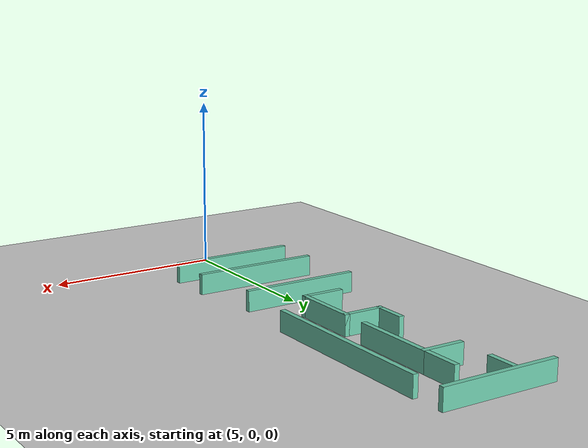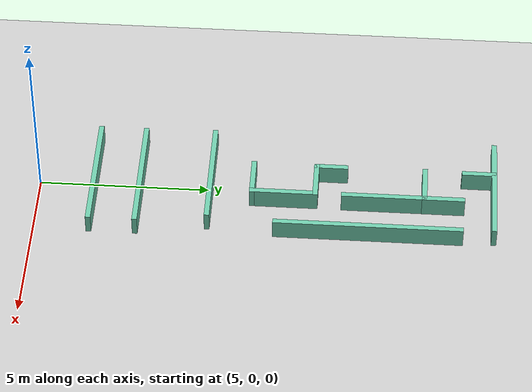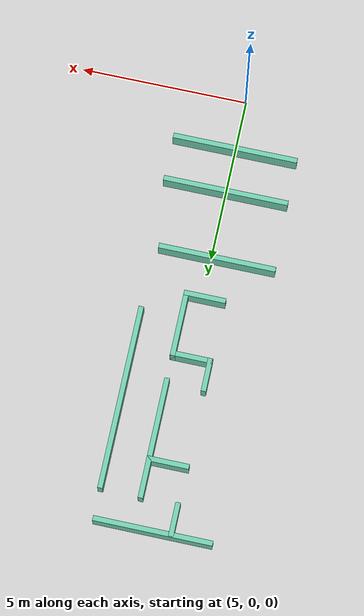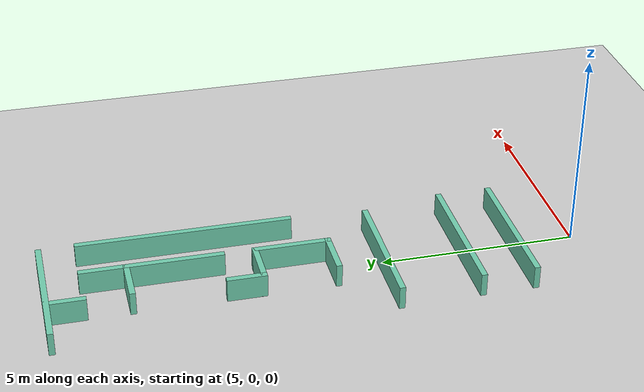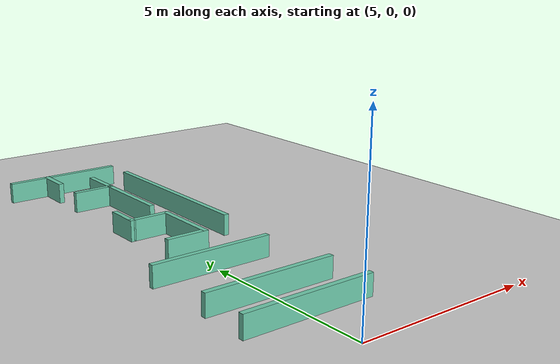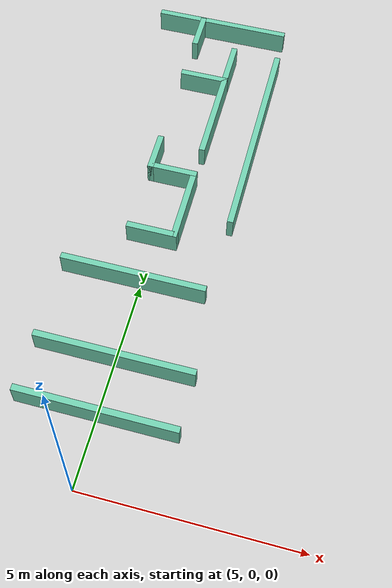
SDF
<sdf version="1.7">
 <world name="default">
  <model name="ground_plane">
   <static>1</static>
   <link name="link">
    <collision name="collision">
     <geometry><plane><normal>0 0 1</normal><size>100 100</size></plane></geometry>
     <surface><friction><ode><mu>100</mu><mu2>50</mu2></ode></friction></surface>
    </collision>
    <visual name="visual">
     <cast_shadows>0</cast_shadows>
     <geometry><plane><normal>0 0 1</normal><size>100 100</size></plane></geometry>
     <material>
      <script><uri>file://media/materials/scripts/gazebo.material</uri><name>Gazebo/Grey</name></script>
     </material>
    </visual>
   </link>
  </model>
  <model name="complicated_maze">
   <pose>-457.073 -167.601 0 0 -0 0</pose>
   <link name="Wall_104">
    <collision name="Wall_104_Collision">
     <geometry><box><size>3.5 0.15 0.6</size></box></geometry>
     <pose>0 0 0.3 0 -0 0</pose>
    </collision>
    <visual name="Wall_104_Visual">
     <pose>0 0 0.3 0 -0 0</pose>
     <geometry><box><size>3.5 0.15 0.6</size></box></geometry>
     <material>
      <script><uri>file://media/materials/scripts/gazebo.material</uri><name>Gazebo/Grey</name></script>
      <ambient>0.435294 0.796078 0.67451 1</ambient>
      <ambient>1 1 1 1</ambient>
     </material>
     <meta><layer>0</layer></meta>
    </visual>
    <pose>461.998 180.966 0 0 -0 0</pose>
   </link>
   <link name="Wall_115">
    <collision name="Wall_115_Collision">
     <geometry><box><size>5.5 0.15 0.6</size></box></geometry>
     <pose>0 0 0.3 0 -0 0</pose>
    </collision>
    <visual name="Wall_115_Visual">
     <pose>0 0 0.3 0 -0 0</pose>
     <geometry><box><size>5.5 0.15 0.6</size></box></geometry>
     <material>
      <script><uri>file://media/materials/scripts/gazebo.material</uri><name>Gazebo/Grey</name></script>
      <ambient>0.435294 0.796078 0.67451 1</ambient>
      <ambient>1 1 1 1</ambient>
     </material>
     <meta><layer>0</layer></meta>
    </visual>
    <pose>463.74 177.328 0 0 -0 -1.5708</pose>
   </link>
   <link name="Wall_194">
    <collision name="Wall_194_Collision">
     <geometry><box><size>3.75 0.15 0.6</size></box></geometry>
     <pose>0 0 0.3 0 -0 0</pose>
    </collision>
    <visual name="Wall_194_Visual">
     <pose>0 0 0.3 0 -0 0</pose>
     <geometry><box><size>3.75 0.15 0.6</size></box></geometry>
     <material>
      <script><uri>file://media/materials/scripts/gazebo.material</uri><name>Gazebo/Grey</name></script>
      <ambient>0.435294 0.796078 0.67451 1</ambient>
      <ambient>1 1 1 1</ambient>
     </material>
     <meta><layer>0</layer></meta>
    </visual>
    <pose>462.07 170.59 0 0 -0 3.14159</pose>
   </link>
   <link name="Wall_196">
    <collision name="Wall_196_Collision">
     <geometry><box><size>3.75 0.15 0.6</size></box></geometry>
     <pose>0 0 0.3 0 -0 0</pose>
    </collision>
    <visual name="Wall_196_Visual">
     <pose>0 0 0.3 0 -0 0</pose>
     <geometry><box><size>3.75 0.15 0.6</size></box></geometry>
     <material>
      <script><uri>file://media/materials/scripts/gazebo.material</uri><name>Gazebo/Grey</name></script>
      <ambient>0.435294 0.796078 0.67451 1</ambient>
      <ambient>1 1 1 1</ambient>
     </material>
     <meta><layer>0</layer></meta>
    </visual>
    <pose>462.07 169.24 0 0 -0 0</pose>
   </link>
   <link name="Wall_76">
    <collision name="Wall_76_Collision">
     <geometry><box><size>1 0.15 0.6</size></box></geometry>
     <pose>0 0 0.3 0 -0 0</pose>
    </collision>
    <visual name="Wall_76_Visual">
     <pose>0 0 0.3 0 -0 0</pose>
     <geometry><box><size>1 0.15 0.6</size></box></geometry>
     <material>
      <script><uri>file://media/materials/scripts/gazebo.material</uri><name>Gazebo/Grey</name></script>
      <ambient>0.435294 0.796078 0.67451 1</ambient>
      <ambient>1 1 1 1</ambient>
     </material>
     <meta><layer>0</layer></meta>
    </visual>
    <pose>461.462 180.516 0 0 -0 -1.5708</pose>
   </link>
   <link name="Wall_78">
    <collision name="Wall_78_Collision">
     <geometry><box><size>1.25 0.15 0.6</size></box></geometry>
     <pose>0 0 0.3 0 -0 0</pose>
    </collision>
    <visual name="Wall_78_Visual">
     <pose>0 0 0.3 0 -0 0</pose>
     <geometry><box><size>1.25 0.15 0.6</size></box></geometry>
     <material>
      <script><uri>file://media/materials/scripts/gazebo.material</uri><name>Gazebo/Grey</name></script>
      <ambient>0.435294 0.796078 0.67451 1</ambient>
      <ambient>1 1 1 1</ambient>
     </material>
     <meta><layer>0</layer></meta>
    </visual>
    <pose>461.999 178.938 0 0 -0 0</pose>
   </link>
   <link name="Wall_79">
    <collision name="Wall_79_Collision">
     <geometry><box><size>1.25 0.15 0.6</size></box></geometry>
     <pose>0 0 0.3 0 -0 0</pose>
    </collision>
    <visual name="Wall_79_Visual">
     <pose>0 0 0.3 0 -0 0</pose>
     <geometry><box><size>1.25 0.15 0.6</size></box></geometry>
     <material>
      <script><uri>file://media/materials/scripts/gazebo.material</uri><name>Gazebo/Grey</name></script>
      <ambient>0.435294 0.796078 0.67451 1</ambient>
      <ambient>1 1 1 1</ambient>
     </material>
     <meta><layer>0</layer></meta>
    </visual>
    <pose>462.549 179.488 0 0 -0 1.5708</pose>
   </link>
   <link name="Wall_81">
    <collision name="Wall_81_Collision">
     <geometry><box><size>2.5 0.15 0.6</size></box></geometry>
     <pose>0 0 0.3 0 -0 0</pose>
    </collision>
    <visual name="Wall_81_Visual">
     <pose>0 0 0.3 0 -0 0</pose>
     <geometry><box><size>2.5 0.15 0.6</size></box></geometry>
     <material>
      <script><uri>file://media/materials/scripts/gazebo.material</uri><name>Gazebo/Grey</name></script>
      <ambient>0.435294 0.796078 0.67451 1</ambient>
      <ambient>1 1 1 1</ambient>
     </material>
     <meta><layer>0</layer></meta>
    </visual>
    <pose>462.549 177.763 0 0 -0 -1.5708</pose>
   </link>
   <link name="Wall_85">
    <collision name="Wall_85_Collision">
     <geometry><box><size>1 0.15 0.6</size></box></geometry>
     <pose>0 0 0.3 0 -0 0</pose>
    </collision>
    <visual name="Wall_85_Visual">
     <pose>0 0 0.3 0 -0 0</pose>
     <geometry><box><size>1 0.15 0.6</size></box></geometry>
     <material>
      <script><uri>file://media/materials/scripts/gazebo.material</uri><name>Gazebo/Grey</name></script>
      <ambient>0.435294 0.796078 0.67451 1</ambient>
      <ambient>1 1 1 1</ambient>
     </material>
     <meta><layer>0</layer></meta>
    </visual>
    <pose>461.443 176.173 0 0 -0 -1.5708</pose>
   </link>
   <link name="Wall_86">
    <collision name="Wall_86_Collision">
     <geometry><box><size>1.25 0.15 0.6</size></box></geometry>
     <pose>0 0 0.3 0 -0 0</pose>
    </collision>
    <visual name="Wall_86_Visual">
     <pose>0 0 0.3 0 -0 0</pose>
     <geometry><box><size>1.25 0.15 0.6</size></box></geometry>
     <material>
      <script><uri>file://media/materials/scripts/gazebo.material</uri><name>Gazebo/Grey</name></script>
      <ambient>0.435294 0.796078 0.67451 1</ambient>
      <ambient>1 1 1 1</ambient>
     </material>
     <meta><layer>0</layer></meta>
    </visual>
    <pose>461.993 175.748 0 0 -0 0</pose>
   </link>
   <link name="Wall_87">
    <collision name="Wall_87_Collision">
     <geometry><box><size>2 0.15 0.6</size></box></geometry>
     <pose>0 0 0.3 0 -0 0</pose>
    </collision>
    <visual name="Wall_87_Visual">
     <pose>0 0 0.3 0 -0 0</pose>
     <geometry><box><size>2 0.15 0.6</size></box></geometry>
     <material>
      <script><uri>file://media/materials/scripts/gazebo.material</uri><name>Gazebo/Grey</name></script>
      <ambient>0.435294 0.796078 0.67451 1</ambient>
      <ambient>1 1 1 1</ambient>
     </material>
     <meta><layer>0</layer></meta>
    </visual>
    <pose>462.543 174.823 0 0 -0 -1.5708</pose>
   </link>
   <link name="Wall_88">
    <collision name="Wall_88_Collision">
     <geometry><box><size>1.25 0.15 0.6</size></box></geometry>
     <pose>0 0 0.3 0 -0 0</pose>
    </collision>
    <visual name="Wall_88_Visual">
     <pose>0 0 0.3 0 -0 0</pose>
     <geometry><box><size>1.25 0.15 0.6</size></box></geometry>
     <material>
      <script><uri>file://media/materials/scripts/gazebo.material</uri><name>Gazebo/Grey</name></script>
      <ambient>0.435294 0.796078 0.67451 1</ambient>
      <ambient>1 1 1 1</ambient>
     </material>
     <meta><layer>0</layer></meta>
    </visual>
    <pose>461.993 173.898 0 0 -0 3.14159</pose>
   </link>
   <link name="Wall_91">
    <collision name="Wall_91_Collision">
     <geometry><box><size>3.5 0.15 0.6</size></box></geometry>
     <pose>0 0 0.3 0 -0 0</pose>
    </collision>
    <visual name="Wall_91_Visual">
     <pose>0 0 0.3 0 -0 0</pose>
     <geometry><box><size>3.5 0.15 0.6</size></box></geometry>
     <material>
      <script><uri>file://media/materials/scripts/gazebo.material</uri><name>Gazebo/Grey</name></script>
      <ambient>0.435294 0.796078 0.67451 1</ambient>
      <ambient>1 1 1 1</ambient>
     </material>
     <meta><layer>0</layer></meta>
    </visual>
    <pose>461.89 172.657 0 0 -0 0</pose>
   </link>
   <static>1</static>
  </model>
 </world>
</sdf>
